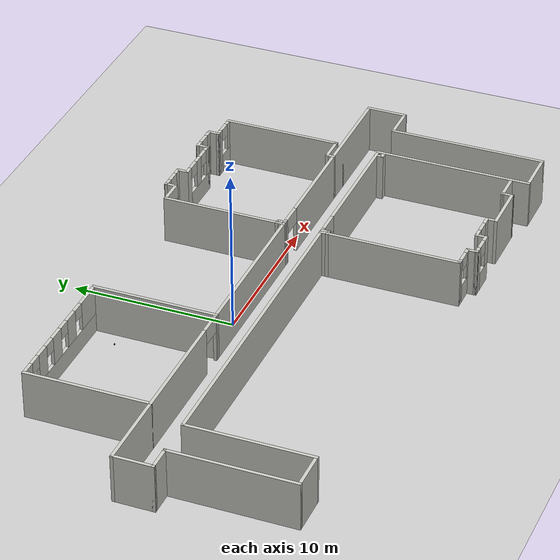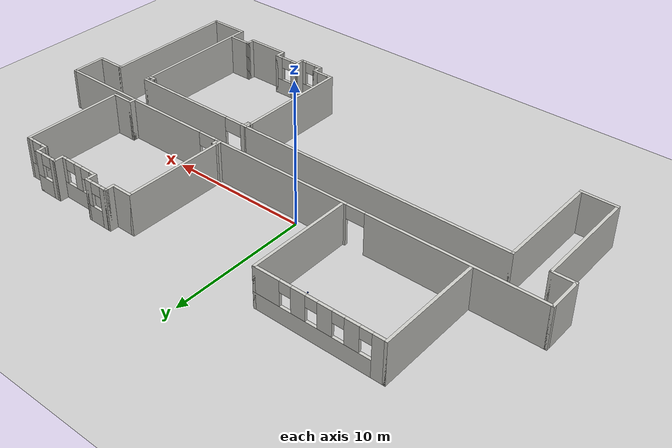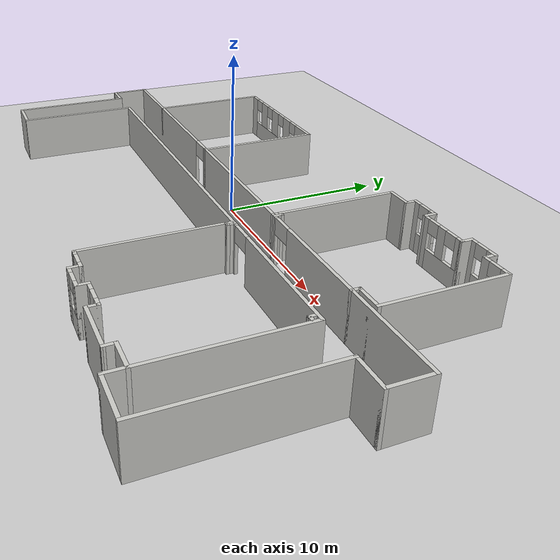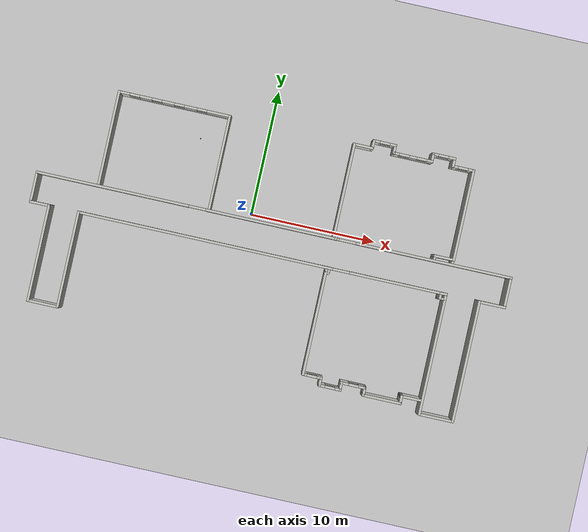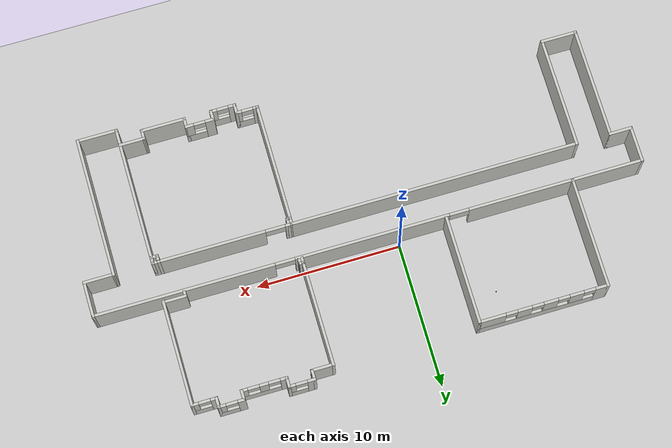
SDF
<sdf version="1.4">
 <world name="default">
  <light name="sun" type="directional">
   <pose>0 0 10 0 -0 0</pose>
   <diffuse>0.8 0.8 0.8 1</diffuse>
   <specular>0.2 0.2 0.2 1</specular>
   <attenuation>
    <range>1000</range>
    <constant>0.9</constant>
    <linear>0.01</linear>
    <quadratic>0.001</quadratic>
   </attenuation>
   <direction>-0.5 0.1 -0.9</direction>
  </light>
  <model name="ground_plane">
   <static>1</static>
   <link name="link">
    <collision name="collision">
     <geometry><plane><normal>0 0 1</normal><size>100 100</size></plane></geometry>
     <surface><friction><ode><mu>100</mu><mu2>50</mu2></ode></friction></surface>
    </collision>
    <visual name="visual">
     <cast_shadows>0</cast_shadows>
     <geometry><plane><normal>0 0 1</normal><size>100 100</size></plane></geometry>
     <material>
      <script><uri>file://media/materials/scripts/gazebo.material</uri><name>Gazebo/Grey</name></script>
     </material>
    </visual>
    <velocity_decay><linear>0</linear><angular>0</angular></velocity_decay>
   </link>
  </model>
  <physics type="ode">
   <max_step_size>0.001</max_step_size>
   <real_time_factor>1</real_time_factor>
   <real_time_update_rate>1000</real_time_update_rate>
   <gravity>0 0 -9.8</gravity>
  </physics>
  <scene><ambient>0.4 0.4 0.4 1</ambient><background>0.7 0.7 0.7 1</background><shadows>1</shadows></scene>
  <spherical_coordinates>
   <surface_model>EARTH_WGS84</surface_model>
   <latitude_deg>0</latitude_deg>
   <longitude_deg>0</longitude_deg>
   <elevation>0</elevation>
   <heading_deg>0</heading_deg>
  </spherical_coordinates>
  <model name="1robotbuilding">
   <link name="Wall_12">
    <collision name="Wall_12_Collision">
     <geometry><box><size>7.79 0.2 3</size></box></geometry>
     <pose>0 0 1.5 0 -0 0</pose>
    </collision>
    <visual name="Wall_12_Visual">
     <pose>0 0 1.5 0 -0 0</pose>
     <geometry><box><size>7.79 0.2 3</size></box></geometry>
     <material>
      <script><uri>file://media/materials/scripts/gazebo.material</uri><name>Gazebo/CeilingTiled</name></script>
     </material>
    </visual>
    <velocity_decay><linear>0</linear><angular>0</angular></velocity_decay>
    <pose>-17.53 -4.975 0 0 0 -1.5708</pose>
   </link>
   <link name="Wall_14">
    <collision name="Wall_14_Collision">
     <geometry><box><size>1.67 0.2 3</size></box></geometry>
     <pose>0 0 1.5 0 -0 0</pose>
    </collision>
    <visual name="Wall_14_Visual">
     <pose>0 0 1.5 0 -0 0</pose>
     <geometry><box><size>1.67 0.2 3</size></box></geometry>
     <material>
      <script><uri>file://media/materials/scripts/gazebo.material</uri><name>Gazebo/CeilingTiled</name></script>
     </material>
    </visual>
    <velocity_decay><linear>0</linear><angular>0</angular></velocity_decay>
    <pose>-18.265 -1.18 0 0 -0 0</pose>
   </link>
   <link name="Wall_18">
    <collision name="Wall_18_Collision">
     <geometry><box><size>2.57 0.2 3</size></box></geometry>
     <pose>0 0 1.5 0 -0 0</pose>
    </collision>
    <visual name="Wall_18_Visual">
     <pose>0 0 1.5 0 -0 0</pose>
     <geometry><box><size>2.57 0.2 3</size></box></geometry>
     <material>
      <script><uri>file://media/materials/scripts/gazebo.material</uri><name>Gazebo/CeilingTiled</name></script>
     </material>
    </visual>
    <velocity_decay><linear>0</linear><angular>0</angular></velocity_decay>
    <pose>-16.345 -8.77 0 0 -0 0</pose>
   </link>
   <link name="Wall_2">
    <pose>-0 1.18 0 0 -0 0</pose>
    <visual name="Wall_2_Visual_0">
     <pose>-12.975 0 1.5 0 -0 0</pose>
     <geometry><box><size>12.25 0.2 3</size></box></geometry>
     <material>
      <script><uri>file://media/materials/scripts/gazebo.material</uri><name>Gazebo/CeilingTiled</name></script>
     </material>
    </visual>
    <collision name="Wall_2_Collision_0">
     <geometry><box><size>12.25 0.2 3</size></box></geometry>
     <pose>-12.975 0 1.5 0 -0 0</pose>
    </collision>
    <visual name="Wall_2_Visual_1">
     <pose>-0.14 0 1.5 0 -0 0</pose>
     <geometry><box><size>10.7 0.2 3</size></box></geometry>
     <material>
      <script><uri>file://media/materials/scripts/gazebo.material</uri><name>Gazebo/CeilingTiled</name></script>
     </material>
    </visual>
    <collision name="Wall_2_Collision_1">
     <geometry><box><size>10.7 0.2 3</size></box></geometry>
     <pose>-0.14 0 1.5 0 -0 0</pose>
    </collision>
    <visual name="Wall_2_Visual_2">
     <pose>12.835 0 1.5 0 -0 0</pose>
     <geometry><box><size>12.53 0.2 3</size></box></geometry>
     <material>
      <script><uri>file://media/materials/scripts/gazebo.material</uri><name>Gazebo/CeilingTiled</name></script>
     </material>
    </visual>
    <collision name="Wall_2_Collision_2">
     <geometry><box><size>12.53 0.2 3</size></box></geometry>
     <pose>12.835 0 1.5 0 -0 0</pose>
    </collision>
    <visual name="Wall_2_Visual_3">
     <pose>-6.17 0 2.5 0 -0 0</pose>
     <geometry><box><size>1.36 0.2 1</size></box></geometry>
     <material>
      <script><uri>file://media/materials/scripts/gazebo.material</uri><name>Gazebo/CeilingTiled</name></script>
     </material>
    </visual>
    <collision name="Wall_2_Collision_3">
     <geometry><box><size>1.36 0.2 1</size></box></geometry>
     <pose>-6.17 0 2.5 0 -0 0</pose>
    </collision>
    <visual name="Wall_2_Visual_4">
     <pose>5.89 0 2.5 0 -0 0</pose>
     <geometry><box><size>1.36 0.2 1</size></box></geometry>
     <material>
      <script><uri>file://media/materials/scripts/gazebo.material</uri><name>Gazebo/CeilingTiled</name></script>
     </material>
    </visual>
    <collision name="Wall_2_Collision_4">
     <geometry><box><size>1.36 0.2 1</size></box></geometry>
     <pose>5.89 0 2.5 0 -0 0</pose>
    </collision>
    <velocity_decay><linear>0</linear><angular>0</angular></velocity_decay>
   </link>
   <link name="Wall_20">
    <collision name="Wall_20_Collision">
     <geometry><box><size>7.79 0.2 3</size></box></geometry>
     <pose>0 0 1.5 0 -0 0</pose>
    </collision>
    <visual name="Wall_20_Visual">
     <pose>0 0 1.5 0 -0 0</pose>
     <geometry><box><size>7.79 0.2 3</size></box></geometry>
     <material>
      <script><uri>file://media/materials/scripts/gazebo.material</uri><name>Gazebo/CeilingTiled</name></script>
     </material>
    </visual>
    <velocity_decay><linear>0</linear><angular>0</angular></velocity_decay>
    <pose>-15.16 -4.975 0 0 -0 1.5708</pose>
   </link>
   <link name="Wall_22">
    <pose>-0.42 -1.18 0 0 -0 0</pose>
    <visual name="Wall_22_Visual_0">
     <pose>-4.605 0 1.5 0 -0 0</pose>
     <geometry><box><size>20.47 0.2 3</size></box></geometry>
     <material>
      <script><uri>file://media/materials/scripts/gazebo.material</uri><name>Gazebo/CeilingTiled</name></script>
     </material>
    </visual>
    <collision name="Wall_22_Collision_0">
     <geometry><box><size>20.47 0.2 3</size></box></geometry>
     <pose>-4.605 0 1.5 0 -0 0</pose>
    </collision>
    <visual name="Wall_22_Visual_1">
     <pose>10.915 0 1.5 0 -0 0</pose>
     <geometry><box><size>7.85 0.2 3</size></box></geometry>
     <material>
      <script><uri>file://media/materials/scripts/gazebo.material</uri><name>Gazebo/CeilingTiled</name></script>
     </material>
    </visual>
    <collision name="Wall_22_Collision_1">
     <geometry><box><size>7.85 0.2 3</size></box></geometry>
     <pose>10.915 0 1.5 0 -0 0</pose>
    </collision>
    <visual name="Wall_22_Visual_2">
     <pose>6.31 0 2.5 0 -0 0</pose>
     <geometry><box><size>1.36 0.2 1</size></box></geometry>
     <material>
      <script><uri>file://media/materials/scripts/gazebo.material</uri><name>Gazebo/CeilingTiled</name></script>
     </material>
    </visual>
    <collision name="Wall_22_Collision_2">
     <geometry><box><size>1.36 0.2 1</size></box></geometry>
     <pose>6.31 0 2.5 0 -0 0</pose>
    </collision>
    <velocity_decay><linear>0</linear><angular>0</angular></velocity_decay>
   </link>
   <link name="Wall_25">
    <collision name="Wall_25_Collision">
     <geometry><box><size>9.81 0.2 3</size></box></geometry>
     <pose>0 0 1.5 0 -0 0</pose>
    </collision>
    <visual name="Wall_25_Visual">
     <pose>0 0 1.5 0 -0 0</pose>
     <geometry><box><size>9.81 0.2 3</size></box></geometry>
     <material>
      <script><uri>file://media/materials/scripts/gazebo.material</uri><name>Gazebo/CeilingTiled</name></script>
     </material>
    </visual>
    <velocity_decay><linear>0</linear><angular>0</angular></velocity_decay>
    <pose>14.32 -5.985 0 0 0 -1.5708</pose>
   </link>
   <link name="Wall_27">
    <collision name="Wall_27_Collision">
     <geometry><box><size>2.88 0.2 3</size></box></geometry>
     <pose>0 0 1.5 0 -0 0</pose>
    </collision>
    <visual name="Wall_27_Visual">
     <pose>0 0 1.5 0 -0 0</pose>
     <geometry><box><size>2.88 0.2 3</size></box></geometry>
     <material>
      <script><uri>file://media/materials/scripts/gazebo.material</uri><name>Gazebo/CeilingTiled</name></script>
     </material>
    </visual>
    <velocity_decay><linear>0</linear><angular>0</angular></velocity_decay>
    <pose>15.66 -10.79 0 0 -0 0</pose>
   </link>
   <link name="Wall_29">
    <collision name="Wall_29_Collision">
     <geometry><box><size>9.81 0.2 3</size></box></geometry>
     <pose>0 0 1.5 0 -0 0</pose>
    </collision>
    <visual name="Wall_29_Visual">
     <pose>0 0 1.5 0 -0 0</pose>
     <geometry><box><size>9.81 0.2 3</size></box></geometry>
     <material>
      <script><uri>file://media/materials/scripts/gazebo.material</uri><name>Gazebo/CeilingTiled</name></script>
     </material>
    </visual>
    <velocity_decay><linear>0</linear><angular>0</angular></velocity_decay>
    <pose>17 -5.985 0 0 -0 1.5708</pose>
   </link>
   <link name="Wall_31">
    <collision name="Wall_31_Collision">
     <geometry><box><size>2.2 0.2 3</size></box></geometry>
     <pose>0 0 1.5 0 -0 0</pose>
    </collision>
    <visual name="Wall_31_Visual">
     <pose>0 0 1.5 0 -0 0</pose>
     <geometry><box><size>2.2 0.2 3</size></box></geometry>
     <material>
      <script><uri>file://media/materials/scripts/gazebo.material</uri><name>Gazebo/CeilingTiled</name></script>
     </material>
    </visual>
    <velocity_decay><linear>0</linear><angular>0</angular></velocity_decay>
    <pose>18 -1.18 0 0 -0 0</pose>
   </link>
   <link name="Wall_33">
    <collision name="Wall_33_Collision">
     <geometry><box><size>7.75 0.2 3</size></box></geometry>
     <pose>0 0 1.5 0 -0 0</pose>
    </collision>
    <visual name="Wall_33_Visual">
     <pose>0 0 1.5 0 -0 0</pose>
     <geometry><box><size>7.75 0.2 3</size></box></geometry>
     <material>
      <script><uri>file://media/materials/scripts/gazebo.material</uri><name>Gazebo/CeilingTiled</name></script>
     </material>
    </visual>
    <velocity_decay><linear>0</linear><angular>0</angular></velocity_decay>
    <pose>-14.11 4.955 0 0 -0 1.5708</pose>
   </link>
   <link name="Wall_35">
    <pose>-9.675 8.73 0 0 -0 0</pose>
    <visual name="Wall_35_Visual_0">
     <pose>-4.05686 0 1.5 0 -0 0</pose>
     <geometry><box><size>0.956284 0.2 3</size></box></geometry>
     <material>
      <script><uri>file://media/materials/scripts/gazebo.material</uri><name>Gazebo/CeilingTiled</name></script>
     </material>
    </visual>
    <collision name="Wall_35_Collision_0">
     <geometry><box><size>0.956284 0.2 3</size></box></geometry>
     <pose>-4.05686 0 1.5 0 -0 0</pose>
    </collision>
    <visual name="Wall_35_Visual_1">
     <pose>0.478142 0 0.6 0 -0 0</pose>
     <geometry><box><size>8.11372 0.2 1.2</size></box></geometry>
     <material>
      <script><uri>file://media/materials/scripts/gazebo.material</uri><name>Gazebo/CeilingTiled</name></script>
     </material>
    </visual>
    <collision name="Wall_35_Collision_1">
     <geometry><box><size>8.11372 0.2 1.2</size></box></geometry>
     <pose>0.478142 0 0.6 0 -0 0</pose>
    </collision>
    <visual name="Wall_35_Visual_2">
     <pose>-2.2916 0 2.1 0 -0 0</pose>
     <geometry><box><size>0.974234 0.2 1.8</size></box></geometry>
     <material>
      <script><uri>file://media/materials/scripts/gazebo.material</uri><name>Gazebo/CeilingTiled</name></script>
     </material>
    </visual>
    <collision name="Wall_35_Collision_2">
     <geometry><box><size>0.974234 0.2 1.8</size></box></geometry>
     <pose>-2.2916 0 2.1 0 -0 0</pose>
    </collision>
    <visual name="Wall_35_Visual_3">
     <pose>-0.50207 0 2.1 0 -0 0</pose>
     <geometry><box><size>1.00482 0.2 1.8</size></box></geometry>
     <material>
      <script><uri>file://media/materials/scripts/gazebo.material</uri><name>Gazebo/CeilingTiled</name></script>
     </material>
    </visual>
    <collision name="Wall_35_Collision_3">
     <geometry><box><size>1.00482 0.2 1.8</size></box></geometry>
     <pose>-0.50207 0 2.1 0 -0 0</pose>
    </collision>
    <visual name="Wall_35_Visual_4">
     <pose>1.30275 0 2.1 0 -0 0</pose>
     <geometry><box><size>1.00482 0.2 1.8</size></box></geometry>
     <material>
      <script><uri>file://media/materials/scripts/gazebo.material</uri><name>Gazebo/CeilingTiled</name></script>
     </material>
    </visual>
    <collision name="Wall_35_Collision_4">
     <geometry><box><size>1.00482 0.2 1.8</size></box></geometry>
     <pose>1.30275 0 2.1 0 -0 0</pose>
    </collision>
    <visual name="Wall_35_Visual_5">
     <pose>3.57008 0 2.1 0 -0 0</pose>
     <geometry><box><size>1.92983 0.2 1.8</size></box></geometry>
     <material>
      <script><uri>file://media/materials/scripts/gazebo.material</uri><name>Gazebo/CeilingTiled</name></script>
     </material>
    </visual>
    <collision name="Wall_35_Collision_5">
     <geometry><box><size>1.92983 0.2 1.8</size></box></geometry>
     <pose>3.57008 0 2.1 0 -0 0</pose>
    </collision>
    <visual name="Wall_35_Visual_6">
     <pose>-3.17872 0 2.6 0 -0 0</pose>
     <geometry><box><size>0.8 0.2 0.8</size></box></geometry>
     <material>
      <script><uri>file://media/materials/scripts/gazebo.material</uri><name>Gazebo/CeilingTiled</name></script>
     </material>
    </visual>
    <collision name="Wall_35_Collision_6">
     <geometry><box><size>0.8 0.2 0.8</size></box></geometry>
     <pose>-3.17872 0 2.6 0 -0 0</pose>
    </collision>
    <visual name="Wall_35_Visual_7">
     <pose>-1.40448 0 2.6 0 -0 0</pose>
     <geometry><box><size>0.8 0.2 0.8</size></box></geometry>
     <material>
      <script><uri>file://media/materials/scripts/gazebo.material</uri><name>Gazebo/CeilingTiled</name></script>
     </material>
    </visual>
    <collision name="Wall_35_Collision_7">
     <geometry><box><size>0.8 0.2 0.8</size></box></geometry>
     <pose>-1.40448 0 2.6 0 -0 0</pose>
    </collision>
    <visual name="Wall_35_Visual_8">
     <pose>0.400341 0 2.6 0 -0 0</pose>
     <geometry><box><size>0.8 0.2 0.8</size></box></geometry>
     <material>
      <script><uri>file://media/materials/scripts/gazebo.material</uri><name>Gazebo/CeilingTiled</name></script>
     </material>
    </visual>
    <collision name="Wall_35_Collision_8">
     <geometry><box><size>0.8 0.2 0.8</size></box></geometry>
     <pose>0.400341 0 2.6 0 -0 0</pose>
    </collision>
    <visual name="Wall_35_Visual_9">
     <pose>2.20517 0 2.6 0 -0 0</pose>
     <geometry><box><size>0.8 0.2 0.8</size></box></geometry>
     <material>
      <script><uri>file://media/materials/scripts/gazebo.material</uri><name>Gazebo/CeilingTiled</name></script>
     </material>
    </visual>
    <collision name="Wall_35_Collision_9">
     <geometry><box><size>0.8 0.2 0.8</size></box></geometry>
     <pose>2.20517 0 2.6 0 -0 0</pose>
    </collision>
    <velocity_decay><linear>0</linear><angular>0</angular></velocity_decay>
   </link>
   <link name="Wall_37">
    <collision name="Wall_37_Collision">
     <geometry><box><size>7.75 0.2 3</size></box></geometry>
     <pose>0 0 1.5 0 -0 0</pose>
    </collision>
    <visual name="Wall_37_Visual">
     <pose>0 0 1.5 0 -0 0</pose>
     <geometry><box><size>7.75 0.2 3</size></box></geometry>
     <material>
      <script><uri>file://media/materials/scripts/gazebo.material</uri><name>Gazebo/CeilingTiled</name></script>
     </material>
    </visual>
    <velocity_decay><linear>0</linear><angular>0</angular></velocity_decay>
    <pose>-5.24 4.955 0 0 0 -1.5708</pose>
   </link>
   <link name="Wall_39">
    <collision name="Wall_39_Collision">
     <geometry><box><size>0.6 0.2 3</size></box></geometry>
     <pose>0 0 1.5 0 -0 0</pose>
    </collision>
    <visual name="Wall_39_Visual">
     <pose>0 0 1.5 0 -0 0</pose>
     <geometry><box><size>0.6 0.2 3</size></box></geometry>
     <material>
      <script><uri>file://media/materials/scripts/gazebo.material</uri><name>Gazebo/CeilingTiled</name></script>
     </material>
    </visual>
    <velocity_decay><linear>0</linear><angular>0</angular></velocity_decay>
    <pose>4.96 1.38 0 0 -0 1.5708</pose>
   </link>
   <link name="Wall_4">
    <collision name="Wall_4_Collision">
     <geometry><box><size>2.56 0.2 3</size></box></geometry>
     <pose>0 0 1.5 0 -0 0</pose>
    </collision>
    <visual name="Wall_4_Visual">
     <pose>0 0 1.5 0 -0 0</pose>
     <geometry><box><size>2.56 0.2 3</size></box></geometry>
     <material>
      <script><uri>file://media/materials/scripts/gazebo.material</uri><name>Gazebo/CeilingTiled</name></script>
     </material>
    </visual>
    <velocity_decay><linear>0</linear><angular>0</angular></velocity_decay>
    <pose>-19 -0 0 0 0 -1.5708</pose>
   </link>
   <link name="Wall_40">
    <collision name="Wall_40_Collision">
     <geometry><box><size>0.4 0.2 3</size></box></geometry>
     <pose>0 0 1.5 0 -0 0</pose>
    </collision>
    <visual name="Wall_40_Visual">
     <pose>0 0 1.5 0 -0 0</pose>
     <geometry><box><size>0.4 0.2 3</size></box></geometry>
     <material>
      <script><uri>file://media/materials/scripts/gazebo.material</uri><name>Gazebo/CeilingTiled</name></script>
     </material>
    </visual>
    <velocity_decay><linear>0</linear><angular>0</angular></velocity_decay>
    <pose>4.86 1.58 0 0 -0 3.14159</pose>
   </link>
   <link name="Wall_41">
    <collision name="Wall_41_Collision">
     <geometry><box><size>7.35 0.2 3</size></box></geometry>
     <pose>0 0 1.5 0 -0 0</pose>
    </collision>
    <visual name="Wall_41_Visual">
     <pose>0 0 1.5 0 -0 0</pose>
     <geometry><box><size>7.35 0.2 3</size></box></geometry>
     <material>
      <script><uri>file://media/materials/scripts/gazebo.material</uri><name>Gazebo/CeilingTiled</name></script>
     </material>
    </visual>
    <velocity_decay><linear>0</linear><angular>0</angular></velocity_decay>
    <pose>4.76 5.155 0 0 -0 1.5708</pose>
   </link>
   <link name="Wall_42">
    <collision name="Wall_42_Collision">
     <geometry><box><size>1.64 0.2 3</size></box></geometry>
     <pose>0 0 1.5 0 -0 0</pose>
    </collision>
    <visual name="Wall_42_Visual">
     <pose>0 0 1.5 0 -0 0</pose>
     <geometry><box><size>1.64 0.2 3</size></box></geometry>
     <material>
      <script><uri>file://media/materials/scripts/gazebo.material</uri><name>Gazebo/CeilingTiled</name></script>
     </material>
    </visual>
    <velocity_decay><linear>0</linear><angular>0</angular></velocity_decay>
    <pose>5.48 8.73 0 0 -0 0</pose>
   </link>
   <link name="Wall_44">
    <collision name="Wall_44_Collision">
     <geometry><box><size>0.8 0.2 3</size></box></geometry>
     <pose>0 0 1.5 0 -0 0</pose>
    </collision>
    <visual name="Wall_44_Visual">
     <pose>0 0 1.5 0 -0 0</pose>
     <geometry><box><size>0.8 0.2 3</size></box></geometry>
     <material>
      <script><uri>file://media/materials/scripts/gazebo.material</uri><name>Gazebo/CeilingTiled</name></script>
     </material>
    </visual>
    <velocity_decay><linear>0</linear><angular>0</angular></velocity_decay>
    <pose>6.2 9.03 0 0 -0 1.5708</pose>
   </link>
   <link name="Wall_46">
    <pose>7.06 9.33 0 0 -0 0</pose>
    <visual name="Wall_46_Visual_0">
     <pose>-0.667659 0 1.5 0 -0 0</pose>
     <geometry><box><size>0.584683 0.2 3</size></box></geometry>
     <material>
      <script><uri>file://media/materials/scripts/gazebo.material</uri><name>Gazebo/CeilingTiled</name></script>
     </material>
    </visual>
    <collision name="Wall_46_Collision_0">
     <geometry><box><size>0.584683 0.2 3</size></box></geometry>
     <pose>-0.667659 0 1.5 0 -0 0</pose>
    </collision>
    <visual name="Wall_46_Visual_1">
     <pose>0.292341 0 0.6 0 -0 0</pose>
     <geometry><box><size>1.33532 0.2 1.2</size></box></geometry>
     <material>
      <script><uri>file://media/materials/scripts/gazebo.material</uri><name>Gazebo/CeilingTiled</name></script>
     </material>
    </visual>
    <collision name="Wall_46_Collision_1">
     <geometry><box><size>1.33532 0.2 1.2</size></box></geometry>
     <pose>0.292341 0 0.6 0 -0 0</pose>
    </collision>
    <visual name="Wall_46_Visual_2">
     <pose>0.692342 0 2.1 0 -0 0</pose>
     <geometry><box><size>0.535317 0.2 1.8</size></box></geometry>
     <material>
      <script><uri>file://media/materials/scripts/gazebo.material</uri><name>Gazebo/CeilingTiled</name></script>
     </material>
    </visual>
    <collision name="Wall_46_Collision_2">
     <geometry><box><size>0.535317 0.2 1.8</size></box></geometry>
     <pose>0.692342 0 2.1 0 -0 0</pose>
    </collision>
    <visual name="Wall_46_Visual_3">
     <pose>0.024683 0 2.6 0 -0 0</pose>
     <geometry><box><size>0.8 0.2 0.8</size></box></geometry>
     <material>
      <script><uri>file://media/materials/scripts/gazebo.material</uri><name>Gazebo/CeilingTiled</name></script>
     </material>
    </visual>
    <collision name="Wall_46_Collision_3">
     <geometry><box><size>0.8 0.2 0.8</size></box></geometry>
     <pose>0.024683 0 2.6 0 -0 0</pose>
    </collision>
    <velocity_decay><linear>0</linear><angular>0</angular></velocity_decay>
   </link>
   <link name="Wall_58">
    <collision name="Wall_58_Collision">
     <geometry><box><size>0.8 0.2 3</size></box></geometry>
     <pose>0 0 1.5 0 -0 0</pose>
    </collision>
    <visual name="Wall_58_Visual">
     <pose>0 0 1.5 0 -0 0</pose>
     <geometry><box><size>0.8 0.2 3</size></box></geometry>
     <material>
      <script><uri>file://media/materials/scripts/gazebo.material</uri><name>Gazebo/CeilingTiled</name></script>
     </material>
    </visual>
    <velocity_decay><linear>0</linear><angular>0</angular></velocity_decay>
    <pose>7.92 9.03 0 0 0 -1.5708</pose>
   </link>
   <link name="Wall_59">
    <pose>9.445 8.73 0 0 -0 0</pose>
    <visual name="Wall_59_Visual_0">
     <pose>-1.35443 0 1.5 0 -0 0</pose>
     <geometry><box><size>0.541138 0.2 3</size></box></geometry>
     <material>
      <script><uri>file://media/materials/scripts/gazebo.material</uri><name>Gazebo/CeilingTiled</name></script>
     </material>
    </visual>
    <collision name="Wall_59_Collision_0">
     <geometry><box><size>0.541138 0.2 3</size></box></geometry>
     <pose>-1.35443 0 1.5 0 -0 0</pose>
    </collision>
    <visual name="Wall_59_Visual_1">
     <pose>0.270569 0 0.6 0 -0 0</pose>
     <geometry><box><size>2.70886 0.2 1.2</size></box></geometry>
     <material>
      <script><uri>file://media/materials/scripts/gazebo.material</uri><name>Gazebo/CeilingTiled</name></script>
     </material>
    </visual>
    <collision name="Wall_59_Collision_1">
     <geometry><box><size>2.70886 0.2 1.2</size></box></geometry>
     <pose>0.270569 0 0.6 0 -0 0</pose>
    </collision>
    <visual name="Wall_59_Visual_2">
     <pose>0.019713 0 2.1 0 -0 0</pose>
     <geometry><box><size>0.60715 0.2 1.8</size></box></geometry>
     <material>
      <script><uri>file://media/materials/scripts/gazebo.material</uri><name>Gazebo/CeilingTiled</name></script>
     </material>
    </visual>
    <collision name="Wall_59_Collision_2">
     <geometry><box><size>0.60715 0.2 1.8</size></box></geometry>
     <pose>0.019713 0 2.1 0 -0 0</pose>
    </collision>
    <visual name="Wall_59_Visual_3">
     <pose>1.37414 0 2.1 0 -0 0</pose>
     <geometry><box><size>0.501711 0.2 1.8</size></box></geometry>
     <material>
      <script><uri>file://media/materials/scripts/gazebo.material</uri><name>Gazebo/CeilingTiled</name></script>
     </material>
    </visual>
    <collision name="Wall_59_Collision_3">
     <geometry><box><size>0.501711 0.2 1.8</size></box></geometry>
     <pose>1.37414 0 2.1 0 -0 0</pose>
    </collision>
    <visual name="Wall_59_Visual_4">
     <pose>-0.683862 0 2.6 0 -0 0</pose>
     <geometry><box><size>0.8 0.2 0.8</size></box></geometry>
     <material>
      <script><uri>file://media/materials/scripts/gazebo.material</uri><name>Gazebo/CeilingTiled</name></script>
     </material>
    </visual>
    <collision name="Wall_59_Collision_4">
     <geometry><box><size>0.8 0.2 0.8</size></box></geometry>
     <pose>-0.683862 0 2.6 0 -0 0</pose>
    </collision>
    <visual name="Wall_59_Visual_5">
     <pose>0.723289 0 2.6 0 -0 0</pose>
     <geometry><box><size>0.8 0.2 0.8</size></box></geometry>
     <material>
      <script><uri>file://media/materials/scripts/gazebo.material</uri><name>Gazebo/CeilingTiled</name></script>
     </material>
    </visual>
    <collision name="Wall_59_Collision_5">
     <geometry><box><size>0.8 0.2 0.8</size></box></geometry>
     <pose>0.723289 0 2.6 0 -0 0</pose>
    </collision>
    <velocity_decay><linear>0</linear><angular>0</angular></velocity_decay>
   </link>
   <link name="Wall_6">
    <collision name="Wall_6_Collision">
     <geometry><box><size>0.2 0.2 3</size></box></geometry>
     <pose>0 0 1.5 0 -0 0</pose>
    </collision>
    <visual name="Wall_6_Visual">
     <pose>0 0 1.5 0 -0 0</pose>
     <geometry><box><size>0.2 0.2 3</size></box></geometry>
     <material>
      <script><uri>file://media/materials/scripts/gazebo.material</uri><name>Gazebo/CeilingTiled</name></script>
     </material>
    </visual>
    <velocity_decay><linear>0</linear><angular>0</angular></velocity_decay>
    <pose>-17.53 -1.18 0 0 -0 0</pose>
   </link>
   <link name="Wall_60">
    <collision name="Wall_60_Collision">
     <geometry><box><size>0.8 0.2 3</size></box></geometry>
     <pose>0 0 1.5 0 -0 0</pose>
    </collision>
    <visual name="Wall_60_Visual">
     <pose>0 0 1.5 0 -0 0</pose>
     <geometry><box><size>0.8 0.2 3</size></box></geometry>
     <material>
      <script><uri>file://media/materials/scripts/gazebo.material</uri><name>Gazebo/CeilingTiled</name></script>
     </material>
    </visual>
    <velocity_decay><linear>0</linear><angular>0</angular></velocity_decay>
    <pose>10.97 9.03 0 0 -0 1.5708</pose>
   </link>
   <link name="Wall_61">
    <pose>11.82 9.33 0 0 -0 0</pose>
    <visual name="Wall_61_Visual_0">
     <pose>-0.690214 0 1.5 0 -0 0</pose>
     <geometry><box><size>0.519571 0.2 3</size></box></geometry>
     <material>
      <script><uri>file://media/materials/scripts/gazebo.material</uri><name>Gazebo/CeilingTiled</name></script>
     </material>
    </visual>
    <collision name="Wall_61_Collision_0">
     <geometry><box><size>0.519571 0.2 3</size></box></geometry>
     <pose>-0.690214 0 1.5 0 -0 0</pose>
    </collision>
    <visual name="Wall_61_Visual_1">
     <pose>0.259786 0 0.6 0 -0 0</pose>
     <geometry><box><size>1.38043 0.2 1.2</size></box></geometry>
     <material>
      <script><uri>file://media/materials/scripts/gazebo.material</uri><name>Gazebo/CeilingTiled</name></script>
     </material>
    </visual>
    <collision name="Wall_61_Collision_1">
     <geometry><box><size>1.38043 0.2 1.2</size></box></geometry>
     <pose>0.259786 0 0.6 0 -0 0</pose>
    </collision>
    <visual name="Wall_61_Visual_2">
     <pose>0.659786 0 2.1 0 -0 0</pose>
     <geometry><box><size>0.580429 0.2 1.8</size></box></geometry>
     <material>
      <script><uri>file://media/materials/scripts/gazebo.material</uri><name>Gazebo/CeilingTiled</name></script>
     </material>
    </visual>
    <collision name="Wall_61_Collision_2">
     <geometry><box><size>0.580429 0.2 1.8</size></box></geometry>
     <pose>0.659786 0 2.1 0 -0 0</pose>
    </collision>
    <visual name="Wall_61_Visual_3">
     <pose>-0.030429 0 2.6 0 -0 0</pose>
     <geometry><box><size>0.8 0.2 0.8</size></box></geometry>
     <material>
      <script><uri>file://media/materials/scripts/gazebo.material</uri><name>Gazebo/CeilingTiled</name></script>
     </material>
    </visual>
    <collision name="Wall_61_Collision_3">
     <geometry><box><size>0.8 0.2 0.8</size></box></geometry>
     <pose>-0.030429 0 2.6 0 -0 0</pose>
    </collision>
    <velocity_decay><linear>0</linear><angular>0</angular></velocity_decay>
   </link>
   <link name="Wall_62">
    <collision name="Wall_62_Collision">
     <geometry><box><size>0.8 0.2 3</size></box></geometry>
     <pose>0 0 1.5 0 -0 0</pose>
    </collision>
    <visual name="Wall_62_Visual">
     <pose>0 0 1.5 0 -0 0</pose>
     <geometry><box><size>0.8 0.2 3</size></box></geometry>
     <material>
      <script><uri>file://media/materials/scripts/gazebo.material</uri><name>Gazebo/CeilingTiled</name></script>
     </material>
    </visual>
    <velocity_decay><linear>0</linear><angular>0</angular></velocity_decay>
    <pose>12.67 9.03 0 0 0 -1.5708</pose>
   </link>
   <link name="Wall_63">
    <pose>13.495 8.73 0 0 -0 0</pose>
    <visual name="Wall_63_Visual_0">
     <pose>-0.673983 0 1.5 0 -0 0</pose>
     <geometry><box><size>0.502034 0.2 3</size></box></geometry>
     <material>
      <script><uri>file://media/materials/scripts/gazebo.material</uri><name>Gazebo/CeilingTiled</name></script>
     </material>
    </visual>
    <collision name="Wall_63_Collision_0">
     <geometry><box><size>0.502034 0.2 3</size></box></geometry>
     <pose>-0.673983 0 1.5 0 -0 0</pose>
    </collision>
    <visual name="Wall_63_Visual_1">
     <pose>0.251017 0 0.6 0 -0 0</pose>
     <geometry><box><size>1.34797 0.2 1.2</size></box></geometry>
     <material>
      <script><uri>file://media/materials/scripts/gazebo.material</uri><name>Gazebo/CeilingTiled</name></script>
     </material>
    </visual>
    <collision name="Wall_63_Collision_1">
     <geometry><box><size>1.34797 0.2 1.2</size></box></geometry>
     <pose>0.251017 0 0.6 0 -0 0</pose>
    </collision>
    <visual name="Wall_63_Visual_2">
     <pose>0.651017 0 2.1 0 -0 0</pose>
     <geometry><box><size>0.547966 0.2 1.8</size></box></geometry>
     <material>
      <script><uri>file://media/materials/scripts/gazebo.material</uri><name>Gazebo/CeilingTiled</name></script>
     </material>
    </visual>
    <collision name="Wall_63_Collision_2">
     <geometry><box><size>0.547966 0.2 1.8</size></box></geometry>
     <pose>0.651017 0 2.1 0 -0 0</pose>
    </collision>
    <visual name="Wall_63_Visual_3">
     <pose>-0.022966 0 2.6 0 -0 0</pose>
     <geometry><box><size>0.8 0.2 0.8</size></box></geometry>
     <material>
      <script><uri>file://media/materials/scripts/gazebo.material</uri><name>Gazebo/CeilingTiled</name></script>
     </material>
    </visual>
    <collision name="Wall_63_Collision_3">
     <geometry><box><size>0.8 0.2 0.8</size></box></geometry>
     <pose>-0.022966 0 2.6 0 -0 0</pose>
    </collision>
    <velocity_decay><linear>0</linear><angular>0</angular></velocity_decay>
   </link>
   <link name="Wall_64">
    <collision name="Wall_64_Collision">
     <geometry><box><size>7.35 0.2 3</size></box></geometry>
     <pose>0 0 1.5 0 -0 0</pose>
    </collision>
    <visual name="Wall_64_Visual">
     <pose>0 0 1.5 0 -0 0</pose>
     <geometry><box><size>7.35 0.2 3</size></box></geometry>
     <material>
      <script><uri>file://media/materials/scripts/gazebo.material</uri><name>Gazebo/CeilingTiled</name></script>
     </material>
    </visual>
    <velocity_decay><linear>0</linear><angular>0</angular></velocity_decay>
    <pose>14.32 5.155 0 0 0 -1.5708</pose>
   </link>
   <link name="Wall_66">
    <collision name="Wall_66_Collision">
     <geometry><box><size>1.7 0.2 3</size></box></geometry>
     <pose>0 0 1.5 0 -0 0</pose>
    </collision>
    <visual name="Wall_66_Visual">
     <pose>0 0 1.5 0 -0 0</pose>
     <geometry><box><size>1.7 0.2 3</size></box></geometry>
     <material>
      <script><uri>file://media/materials/scripts/gazebo.material</uri><name>Gazebo/CeilingTiled</name></script>
     </material>
    </visual>
    <velocity_decay><linear>0</linear><angular>0</angular></velocity_decay>
    <pose>13.57 1.58 0 0 -0 3.14159</pose>
   </link>
   <link name="Wall_68">
    <collision name="Wall_68_Collision">
     <geometry><box><size>0.6 0.2 3</size></box></geometry>
     <pose>0 0 1.5 0 -0 0</pose>
    </collision>
    <visual name="Wall_68_Visual">
     <pose>0 0 1.5 0 -0 0</pose>
     <geometry><box><size>0.6 0.2 3</size></box></geometry>
     <material>
      <script><uri>file://media/materials/scripts/gazebo.material</uri><name>Gazebo/CeilingTiled</name></script>
     </material>
    </visual>
    <velocity_decay><linear>0</linear><angular>0</angular></velocity_decay>
    <pose>12.82 1.38 0 0 0 -1.5708</pose>
   </link>
   <link name="Wall_70">
    <collision name="Wall_70_Collision">
     <geometry><box><size>0.6 0.2 3</size></box></geometry>
     <pose>0 0 1.5 0 -0 0</pose>
    </collision>
    <visual name="Wall_70_Visual">
     <pose>0 0 1.5 0 -0 0</pose>
     <geometry><box><size>0.6 0.2 3</size></box></geometry>
     <material>
      <script><uri>file://media/materials/scripts/gazebo.material</uri><name>Gazebo/CeilingTiled</name></script>
     </material>
    </visual>
    <velocity_decay><linear>0</linear><angular>0</angular></velocity_decay>
    <pose>4.96 -1.38 0 0 0 -1.5708</pose>
   </link>
   <link name="Wall_71">
    <collision name="Wall_71_Collision">
     <geometry><box><size>0.4 0.2 3</size></box></geometry>
     <pose>0 0 1.5 0 -0 0</pose>
    </collision>
    <visual name="Wall_71_Visual">
     <pose>0 0 1.5 0 -0 0</pose>
     <geometry><box><size>0.4 0.2 3</size></box></geometry>
     <material>
      <script><uri>file://media/materials/scripts/gazebo.material</uri><name>Gazebo/CeilingTiled</name></script>
     </material>
    </visual>
    <velocity_decay><linear>0</linear><angular>0</angular></velocity_decay>
    <pose>4.86 -1.58 0 0 -0 3.14159</pose>
   </link>
   <link name="Wall_72">
    <collision name="Wall_72_Collision">
     <geometry><box><size>8.34 0.2 3</size></box></geometry>
     <pose>0 0 1.5 0 -0 0</pose>
    </collision>
    <visual name="Wall_72_Visual">
     <pose>0 0 1.5 0 -0 0</pose>
     <geometry><box><size>8.34 0.2 3</size></box></geometry>
     <material>
      <script><uri>file://media/materials/scripts/gazebo.material</uri><name>Gazebo/CeilingTiled</name></script>
     </material>
    </visual>
    <velocity_decay><linear>0</linear><angular>0</angular></velocity_decay>
    <pose>4.76 -5.65 0 0 0 -1.5708</pose>
   </link>
   <link name="Wall_73">
    <pose>5.48 -9.72 0 0 -0 0</pose>
    <visual name="Wall_73_Visual_0">
     <pose>-0.615311 0 1.5 0 -0 0</pose>
     <geometry><box><size>0.409379 0.2 3</size></box></geometry>
     <material>
      <script><uri>file://media/materials/scripts/gazebo.material</uri><name>Gazebo/CeilingTiled</name></script>
     </material>
    </visual>
    <collision name="Wall_73_Collision_0">
     <geometry><box><size>0.409379 0.2 3</size></box></geometry>
     <pose>-0.615311 0 1.5 0 -0 0</pose>
    </collision>
    <visual name="Wall_73_Visual_1">
     <pose>0.204689 0 0.6 0 -0 0</pose>
     <geometry><box><size>1.23062 0.2 1.2</size></box></geometry>
     <material>
      <script><uri>file://media/materials/scripts/gazebo.material</uri><name>Gazebo/CeilingTiled</name></script>
     </material>
    </visual>
    <collision name="Wall_73_Collision_1">
     <geometry><box><size>1.23062 0.2 1.2</size></box></geometry>
     <pose>0.204689 0 0.6 0 -0 0</pose>
    </collision>
    <visual name="Wall_73_Visual_2">
     <pose>0.604689 0 2.1 0 -0 0</pose>
     <geometry><box><size>0.430621 0.2 1.8</size></box></geometry>
     <material>
      <script><uri>file://media/materials/scripts/gazebo.material</uri><name>Gazebo/CeilingTiled</name></script>
     </material>
    </visual>
    <collision name="Wall_73_Collision_2">
     <geometry><box><size>0.430621 0.2 1.8</size></box></geometry>
     <pose>0.604689 0 2.1 0 -0 0</pose>
    </collision>
    <visual name="Wall_73_Visual_3">
     <pose>-0.010621 0 2.6 0 -0 0</pose>
     <geometry><box><size>0.8 0.2 0.8</size></box></geometry>
     <material>
      <script><uri>file://media/materials/scripts/gazebo.material</uri><name>Gazebo/CeilingTiled</name></script>
     </material>
    </visual>
    <collision name="Wall_73_Collision_3">
     <geometry><box><size>0.8 0.2 0.8</size></box></geometry>
     <pose>-0.010621 0 2.6 0 -0 0</pose>
    </collision>
    <velocity_decay><linear>0</linear><angular>0</angular></velocity_decay>
   </link>
   <link name="Wall_75">
    <collision name="Wall_75_Collision">
     <geometry><box><size>0.77 0.2 3</size></box></geometry>
     <pose>0 0 1.5 0 -0 0</pose>
    </collision>
    <visual name="Wall_75_Visual">
     <pose>0 0 1.5 0 -0 0</pose>
     <geometry><box><size>0.77 0.2 3</size></box></geometry>
     <material>
      <script><uri>file://media/materials/scripts/gazebo.material</uri><name>Gazebo/CeilingTiled</name></script>
     </material>
    </visual>
    <velocity_decay><linear>0</linear><angular>0</angular></velocity_decay>
    <pose>6.2 -10.005 0 0 0 -1.5708</pose>
   </link>
   <link name="Wall_76">
    <pose>7.025 -10.29 0 0 -0 0</pose>
    <visual name="Wall_76_Visual_0">
     <pose>-0.653014 0 1.5 0 -0 0</pose>
     <geometry><box><size>0.543972 0.2 3</size></box></geometry>
     <material>
      <script><uri>file://media/materials/scripts/gazebo.material</uri><name>Gazebo/CeilingTiled</name></script>
     </material>
    </visual>
    <collision name="Wall_76_Collision_0">
     <geometry><box><size>0.543972 0.2 3</size></box></geometry>
     <pose>-0.653014 0 1.5 0 -0 0</pose>
    </collision>
    <visual name="Wall_76_Visual_1">
     <pose>0.271986 0 0.6 0 -0 0</pose>
     <geometry><box><size>1.30603 0.2 1.2</size></box></geometry>
     <material>
      <script><uri>file://media/materials/scripts/gazebo.material</uri><name>Gazebo/CeilingTiled</name></script>
     </material>
    </visual>
    <collision name="Wall_76_Collision_1">
     <geometry><box><size>1.30603 0.2 1.2</size></box></geometry>
     <pose>0.271986 0 0.6 0 -0 0</pose>
    </collision>
    <visual name="Wall_76_Visual_2">
     <pose>0.671986 0 2.1 0 -0 0</pose>
     <geometry><box><size>0.506028 0.2 1.8</size></box></geometry>
     <material>
      <script><uri>file://media/materials/scripts/gazebo.material</uri><name>Gazebo/CeilingTiled</name></script>
     </material>
    </visual>
    <collision name="Wall_76_Collision_2">
     <geometry><box><size>0.506028 0.2 1.8</size></box></geometry>
     <pose>0.671986 0 2.1 0 -0 0</pose>
    </collision>
    <visual name="Wall_76_Visual_3">
     <pose>0.018972 0 2.6 0 -0 0</pose>
     <geometry><box><size>0.8 0.2 0.8</size></box></geometry>
     <material>
      <script><uri>file://media/materials/scripts/gazebo.material</uri><name>Gazebo/CeilingTiled</name></script>
     </material>
    </visual>
    <collision name="Wall_76_Collision_3">
     <geometry><box><size>0.8 0.2 0.8</size></box></geometry>
     <pose>0.018972 0 2.6 0 -0 0</pose>
    </collision>
    <velocity_decay><linear>0</linear><angular>0</angular></velocity_decay>
   </link>
   <link name="Wall_77">
    <collision name="Wall_77_Collision">
     <geometry><box><size>0.77 0.2 3</size></box></geometry>
     <pose>0 0 1.5 0 -0 0</pose>
    </collision>
    <visual name="Wall_77_Visual">
     <pose>0 0 1.5 0 -0 0</pose>
     <geometry><box><size>0.77 0.2 3</size></box></geometry>
     <material>
      <script><uri>file://media/materials/scripts/gazebo.material</uri><name>Gazebo/CeilingTiled</name></script>
     </material>
    </visual>
    <velocity_decay><linear>0</linear><angular>0</angular></velocity_decay>
    <pose>7.85 -10.005 0 0 -0 1.5708</pose>
   </link>
   <link name="Wall_78">
    <pose>8.785 -9.72 0 0 -0 0</pose>
    <visual name="Wall_78_Visual_0">
     <pose>-0.70351 0 1.5 0 -0 0</pose>
     <geometry><box><size>0.66298 0.2 3</size></box></geometry>
     <material>
      <script><uri>file://media/materials/scripts/gazebo.material</uri><name>Gazebo/CeilingTiled</name></script>
     </material>
    </visual>
    <collision name="Wall_78_Collision_0">
     <geometry><box><size>0.66298 0.2 3</size></box></geometry>
     <pose>-0.70351 0 1.5 0 -0 0</pose>
    </collision>
    <visual name="Wall_78_Visual_1">
     <pose>0.33149 0 0.6 0 -0 0</pose>
     <geometry><box><size>1.40702 0.2 1.2</size></box></geometry>
     <material>
      <script><uri>file://media/materials/scripts/gazebo.material</uri><name>Gazebo/CeilingTiled</name></script>
     </material>
    </visual>
    <collision name="Wall_78_Collision_1">
     <geometry><box><size>1.40702 0.2 1.2</size></box></geometry>
     <pose>0.33149 0 0.6 0 -0 0</pose>
    </collision>
    <visual name="Wall_78_Visual_2">
     <pose>0.73149 0 2.1 0 -0 0</pose>
     <geometry><box><size>0.60702 0.2 1.8</size></box></geometry>
     <material>
      <script><uri>file://media/materials/scripts/gazebo.material</uri><name>Gazebo/CeilingTiled</name></script>
     </material>
    </visual>
    <collision name="Wall_78_Collision_2">
     <geometry><box><size>0.60702 0.2 1.8</size></box></geometry>
     <pose>0.73149 0 2.1 0 -0 0</pose>
    </collision>
    <visual name="Wall_78_Visual_3">
     <pose>0.02798 0 2.6 0 -0 0</pose>
     <geometry><box><size>0.8 0.2 0.8</size></box></geometry>
     <material>
      <script><uri>file://media/materials/scripts/gazebo.material</uri><name>Gazebo/CeilingTiled</name></script>
     </material>
    </visual>
    <collision name="Wall_78_Collision_3">
     <geometry><box><size>0.8 0.2 0.8</size></box></geometry>
     <pose>0.02798 0 2.6 0 -0 0</pose>
    </collision>
    <velocity_decay><linear>0</linear><angular>0</angular></velocity_decay>
   </link>
   <link name="Wall_79">
    <collision name="Wall_79_Collision">
     <geometry><box><size>0.77 0.2 3</size></box></geometry>
     <pose>0 0 1.5 0 -0 0</pose>
    </collision>
    <visual name="Wall_79_Visual">
     <pose>0 0 1.5 0 -0 0</pose>
     <geometry><box><size>0.77 0.2 3</size></box></geometry>
     <material>
      <script><uri>file://media/materials/scripts/gazebo.material</uri><name>Gazebo/CeilingTiled</name></script>
     </material>
    </visual>
    <velocity_decay><linear>0</linear><angular>0</angular></velocity_decay>
    <pose>9.72 -10.005 0 0 0 -1.5708</pose>
   </link>
   <link name="Wall_80">
    <collision name="Wall_80_Collision">
     <geometry><box><size>3.15846 0.2 3</size></box></geometry>
     <pose>0 0 1.5 0 -0 0</pose>
    </collision>
    <visual name="Wall_80_Visual">
     <pose>0 0 1.5 0 -0 0</pose>
     <geometry><box><size>3.15846 0.2 3</size></box></geometry>
     <material>
      <script><uri>file://media/materials/scripts/gazebo.material</uri><name>Gazebo/CeilingTiled</name></script>
     </material>
    </visual>
    <velocity_decay><linear>0</linear><angular>0</angular></velocity_decay>
    <pose>11.199 -10.29 0 0 -0 0</pose>
   </link>
   <link name="Wall_81">
    <collision name="Wall_81_Collision">
     <geometry><box><size>0.77 0.2 3</size></box></geometry>
     <pose>0 0 1.5 0 -0 0</pose>
    </collision>
    <visual name="Wall_81_Visual">
     <pose>0 0 1.5 0 -0 0</pose>
     <geometry><box><size>0.77 0.2 3</size></box></geometry>
     <material>
      <script><uri>file://media/materials/scripts/gazebo.material</uri><name>Gazebo/CeilingTiled</name></script>
     </material>
    </visual>
    <velocity_decay><linear>0</linear><angular>0</angular></velocity_decay>
    <pose>12.674 -10.005 0 0 -0 1.58483</pose>
   </link>
   <link name="Wall_82">
    <collision name="Wall_82_Collision">
     <geometry><box><size>1.85 0.2 3</size></box></geometry>
     <pose>0 0 1.5 0 -0 0</pose>
    </collision>
    <visual name="Wall_82_Visual">
     <pose>0 0 1.5 0 -0 0</pose>
     <geometry><box><size>1.85 0.2 3</size></box></geometry>
     <material>
      <script><uri>file://media/materials/scripts/gazebo.material</uri><name>Gazebo/CeilingTiled</name></script>
     </material>
    </visual>
    <velocity_decay><linear>0</linear><angular>0</angular></velocity_decay>
    <pose>13.495 -9.72 0 0 -0 0</pose>
   </link>
   <link name="Wall_84">
    <collision name="Wall_84_Collision">
     <geometry><box><size>0.6 0.2 3</size></box></geometry>
     <pose>0 0 1.5 0 -0 0</pose>
    </collision>
    <visual name="Wall_84_Visual">
     <pose>0 0 1.5 0 -0 0</pose>
     <geometry><box><size>0.6 0.2 3</size></box></geometry>
     <material>
      <script><uri>file://media/materials/scripts/gazebo.material</uri><name>Gazebo/CeilingTiled</name></script>
     </material>
    </visual>
    <velocity_decay><linear>0</linear><angular>0</angular></velocity_decay>
    <pose>13.92 -1.38 0 0 0 -1.5708</pose>
   </link>
   <link name="Wall_85">
    <collision name="Wall_85_Collision">
     <geometry><box><size>0.6 0.2 3</size></box></geometry>
     <pose>0 0 1.5 0 -0 0</pose>
    </collision>
    <visual name="Wall_85_Visual">
     <pose>0 0 1.5 0 -0 0</pose>
     <geometry><box><size>0.6 0.2 3</size></box></geometry>
     <material>
      <script><uri>file://media/materials/scripts/gazebo.material</uri><name>Gazebo/CeilingTiled</name></script>
     </material>
    </visual>
    <velocity_decay><linear>0</linear><angular>0</angular></velocity_decay>
    <pose>14.12 -1.58 0 0 -0 0</pose>
   </link>
   <link name="Wall_87">
    <collision name="Wall_87_Collision">
     <geometry><box><size>0.6 0.2 2.5</size></box></geometry>
     <pose>0 0 1.25 0 -0 0</pose>
    </collision>
    <visual name="Wall_87_Visual">
     <pose>0 0 1.25 0 -0 0</pose>
     <geometry><box><size>0.6 0.2 2.5</size></box></geometry>
     <material>
      <script><uri>file://media/materials/scripts/gazebo.material</uri><name>Gazebo/CeilingTiled</name></script>
     </material>
    </visual>
    <velocity_decay><linear>0</linear><angular>0</angular></velocity_decay>
    <pose>14.32 1.38 0 0 0 -1.5708</pose>
   </link>
   <link name="Wall_89">
    <collision name="Wall_89_Collision">
     <geometry><box><size>0.6 0.2 3</size></box></geometry>
     <pose>0 0 1.5 0 -0 0</pose>
    </collision>
    <visual name="Wall_89_Visual">
     <pose>0 0 1.5 0 -0 0</pose>
     <geometry><box><size>0.6 0.2 3</size></box></geometry>
     <material>
      <script><uri>file://media/materials/scripts/gazebo.material</uri><name>Gazebo/CeilingTiled</name></script>
     </material>
    </visual>
    <velocity_decay><linear>0</linear><angular>0</angular></velocity_decay>
    <pose>4.76 1.38 0 0 0 -1.5708</pose>
   </link>
   <link name="Wall_9">
    <collision name="Wall_9_Collision">
     <geometry><box><size>2.56 0.2 3</size></box></geometry>
     <pose>0 0 1.5 0 -0 0</pose>
    </collision>
    <visual name="Wall_9_Visual">
     <pose>0 0 1.5 0 -0 0</pose>
     <geometry><box><size>2.56 0.2 3</size></box></geometry>
     <material>
      <script><uri>file://media/materials/scripts/gazebo.material</uri><name>Gazebo/CeilingTiled</name></script>
     </material>
    </visual>
    <velocity_decay><linear>0</linear><angular>0</angular></velocity_decay>
    <pose>19 -0 0 0 0 -1.5708</pose>
   </link>
   <link name="Wall_91">
    <collision name="Wall_91_Collision">
     <geometry><box><size>0.600061 0.2 3</size></box></geometry>
     <pose>0 0 1.5 0 -0 0</pose>
    </collision>
    <visual name="Wall_91_Visual">
     <pose>0 0 1.5 0 -0 0</pose>
     <geometry><box><size>0.600061 0.2 3</size></box></geometry>
     <material>
      <script><uri>file://media/materials/scripts/gazebo.material</uri><name>Gazebo/CeilingTiled</name></script>
     </material>
    </visual>
    <velocity_decay><linear>0</linear><angular>0</angular></velocity_decay>
    <pose>4.7635 -1.38 0 0 -0 1.5883</pose>
   </link>
   <static>1</static>
   <pose>1.9276 -1.61506 0 0 -0 0</pose>
  </model>
  <model name="demo_cube_0">
   <static>0</static>
   <link name="link">
    <inertial>
     <mass>0.25</mass>
     <inertia><ixx>0.001</ixx><ixy>0</ixy><ixz>0</ixz><iyy>0.001</iyy><iyz>0</iyz><izz>0.001</izz></inertia>
    </inertial>
    <collision name="collision">
     <geometry><box><size>0.06 0.06 0.06</size></box></geometry>
     <surface>
      <friction><ode><mu>30</mu><mu2>30</mu2></ode></friction>
      <contact><ode><kp>1e+06</kp><kd>100</kd><max_vel>1</max_vel><min_depth>0.002</min_depth></ode></contact>
     </surface>
    </collision>
    <visual name="visual">
     <geometry><box><size>0.06 0.06 0.06</size></box></geometry>
     <material>
      <script><uri>file://media/materials/scripts/gazebo.material</uri><name>Gazebo/Blue</name></script>
     </material>
    </visual>
    <velocity_decay><linear>0</linear><angular>0</angular></velocity_decay>
   </link>
   <pose>-5.24917 5 0.802999 -0 -0 -0</pose>
  </model>
 </world>
</sdf>
